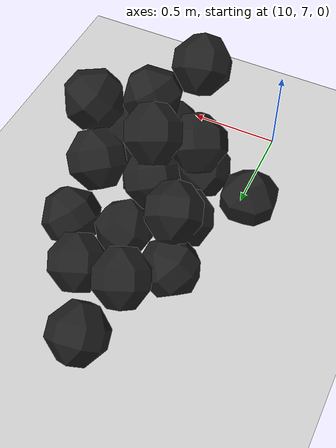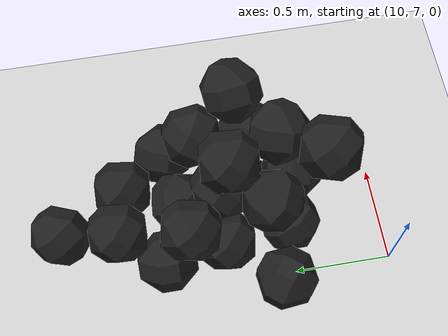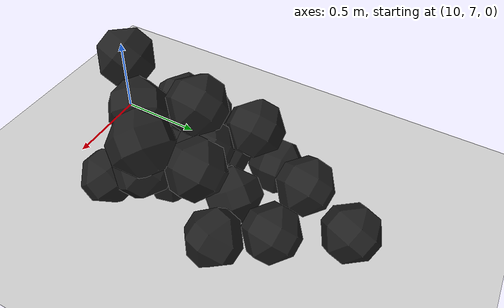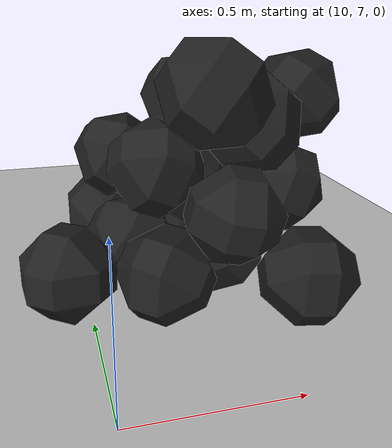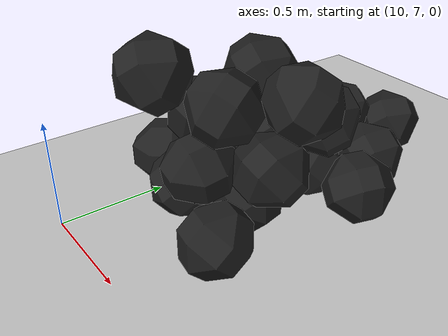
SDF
<sdf version="1.6">
 <world name="default">
  <model name="ground_plane">
   <static>1</static>
   <link name="link">
    <collision name="collision">
     <geometry><plane><normal>0 0 1</normal><size>100 100</size></plane></geometry>
     <surface><friction><ode><mu>100</mu><mu2>50</mu2></ode></friction></surface>
    </collision>
    <visual name="visual">
     <cast_shadows>0</cast_shadows>
     <geometry><plane><normal>0 0 1</normal><size>100 100</size></plane></geometry>
     <material>
      <script><uri>file://media/materials/scripts/gazebo.material</uri><name>Gazebo/Grey</name></script>
     </material>
    </visual>
   </link>
  </model>
  <model name="haoduomiantiaa_9">
   <link name="link_0">
    <inertial>
     <mass>0.2</mass>
     <inertia>
      <ixx>0.166667</ixx>
      <ixy>0</ixy>
      <ixz>0</ixz>
      <iyy>0.166667</iyy>
      <iyz>0</iyz>
      <izz>0.166667</izz>
     </inertia>
    </inertial>
    <visual name="visual">
     <geometry>
      <mesh>
       <uri>/home/oliver/catkin_ws/src/pudong_gazebo/world/stl/haoduomianti.stl</uri>
       <scale>1 1 1</scale>
      </mesh>
     </geometry>
     <material>
      <lighting>1</lighting>
      <script><uri>file://media/materials/scripts/gazebo.material</uri><name>Gazebo/Black</name></script>
      <shader type="pixel"><normal_map>__default__</normal_map></shader>
      <ambient>0.3 0.3 0.3 1</ambient>
      <diffuse>0.7 0.7 0.7 1</diffuse>
      <specular>0.01 0.01 0.01 1</specular>
      <emissive>0 0 0 1</emissive>
     </material>
    </visual>
    <collision name="collision">
     <geometry>
      <mesh>
       <uri>/home/oliver/catkin_ws/src/pudong_gazebo/world/stl/haoduomianti.stl</uri>
       <scale>1 1 1</scale>
      </mesh>
     </geometry>
     <surface>
      <friction>
       <ode><mu>1</mu><mu2>1</mu2><fdir1>0 0 0</fdir1><slip1>0</slip1><slip2>0</slip2></ode>
       <torsional>
        <coefficient>1</coefficient>
        <patch_radius>0</patch_radius>
        <surface_radius>0</surface_radius>
        <use_patch_radius>1</use_patch_radius>
        <ode><slip>0</slip></ode>
       </torsional>
      </friction>
      <bounce><restitution_coefficient>0</restitution_coefficient><threshold>1e+06</threshold></bounce>
      <contact>
       <collide_without_contact>0</collide_without_contact>
       <collide_without_contact_bitmask>1</collide_without_contact_bitmask>
       <collide_bitmask>1</collide_bitmask>
       <ode>
        <soft_cfm>0</soft_cfm>
        <soft_erp>0.2</soft_erp>
        <kp>1e+13</kp>
        <kd>1</kd>
        <max_vel>0.01</max_vel>
        <min_depth>0</min_depth>
       </ode>
       <bullet>
        <split_impulse>1</split_impulse>
        <split_impulse_penetration_threshold>-0.01</split_impulse_penetration_threshold>
        <soft_cfm>0</soft_cfm>
        <soft_erp>0.2</soft_erp>
        <kp>1e+13</kp>
        <kd>1</kd>
       </bullet>
      </contact>
     </surface>
    </collision>
   </link>
   <static>0</static>
   <pose>10.8139 7.36028 -0.075482 0.068637 -0.784227 1.38536</pose>
  </model>
  <model name="haoduomiantiaa_11">
   <link name="link_0">
    <inertial>
     <mass>0.2</mass>
     <inertia>
      <ixx>0.166667</ixx>
      <ixy>0</ixy>
      <ixz>0</ixz>
      <iyy>0.166667</iyy>
      <iyz>0</iyz>
      <izz>0.166667</izz>
     </inertia>
    </inertial>
    <visual name="visual">
     <geometry>
      <mesh>
       <uri>/home/oliver/catkin_ws/src/pudong_gazebo/world/stl/haoduomianti.stl</uri>
       <scale>1 1 1</scale>
      </mesh>
     </geometry>
     <material>
      <lighting>1</lighting>
      <script><uri>file://media/materials/scripts/gazebo.material</uri><name>Gazebo/Black</name></script>
      <shader type="pixel"><normal_map>__default__</normal_map></shader>
      <ambient>0.3 0.3 0.3 1</ambient>
      <diffuse>0.7 0.7 0.7 1</diffuse>
      <specular>0.01 0.01 0.01 1</specular>
      <emissive>0 0 0 1</emissive>
     </material>
    </visual>
    <collision name="collision">
     <geometry>
      <mesh>
       <uri>/home/oliver/catkin_ws/src/pudong_gazebo/world/stl/haoduomianti.stl</uri>
       <scale>1 1 1</scale>
      </mesh>
     </geometry>
     <surface>
      <friction>
       <ode><mu>1</mu><mu2>1</mu2><fdir1>0 0 0</fdir1><slip1>0</slip1><slip2>0</slip2></ode>
       <torsional>
        <coefficient>1</coefficient>
        <patch_radius>0</patch_radius>
        <surface_radius>0</surface_radius>
        <use_patch_radius>1</use_patch_radius>
        <ode><slip>0</slip></ode>
       </torsional>
      </friction>
      <bounce><restitution_coefficient>0</restitution_coefficient><threshold>1e+06</threshold></bounce>
      <contact>
       <collide_without_contact>0</collide_without_contact>
       <collide_without_contact_bitmask>1</collide_without_contact_bitmask>
       <collide_bitmask>1</collide_bitmask>
       <ode>
        <soft_cfm>0</soft_cfm>
        <soft_erp>0.2</soft_erp>
        <kp>1e+13</kp>
        <kd>1</kd>
        <max_vel>0.01</max_vel>
        <min_depth>0</min_depth>
       </ode>
       <bullet>
        <split_impulse>1</split_impulse>
        <split_impulse_penetration_threshold>-0.01</split_impulse_penetration_threshold>
        <soft_cfm>0</soft_cfm>
        <soft_erp>0.2</soft_erp>
        <kp>1e+13</kp>
        <kd>1</kd>
       </bullet>
      </contact>
     </surface>
    </collision>
   </link>
   <static>0</static>
   <pose>10.3337 7.41864 -0.080507 0.143591 -0.780105 0.763256</pose>
  </model>
  <model name="haoduomiantiaa_21">
   <link name="link_0">
    <inertial>
     <mass>0.2</mass>
     <inertia>
      <ixx>0.166667</ixx>
      <ixy>0</ixy>
      <ixz>0</ixz>
      <iyy>0.166667</iyy>
      <iyz>0</iyz>
      <izz>0.166667</izz>
     </inertia>
    </inertial>
    <visual name="visual">
     <geometry>
      <mesh>
       <uri>/home/oliver/catkin_ws/src/pudong_gazebo/world/stl/haoduomianti.stl</uri>
       <scale>1 1 1</scale>
      </mesh>
     </geometry>
     <material>
      <lighting>1</lighting>
      <script><uri>file://media/materials/scripts/gazebo.material</uri><name>Gazebo/Black</name></script>
      <shader type="pixel"><normal_map>__default__</normal_map></shader>
      <ambient>0.3 0.3 0.3 1</ambient>
      <diffuse>0.7 0.7 0.7 1</diffuse>
      <specular>0.01 0.01 0.01 1</specular>
      <emissive>0 0 0 1</emissive>
     </material>
    </visual>
    <collision name="collision">
     <geometry>
      <mesh>
       <uri>/home/oliver/catkin_ws/src/pudong_gazebo/world/stl/haoduomianti.stl</uri>
       <scale>1 1 1</scale>
      </mesh>
     </geometry>
     <surface>
      <friction>
       <ode><mu>1</mu><mu2>1</mu2><fdir1>0 0 0</fdir1><slip1>0</slip1><slip2>0</slip2></ode>
       <torsional>
        <coefficient>1</coefficient>
        <patch_radius>0</patch_radius>
        <surface_radius>0</surface_radius>
        <use_patch_radius>1</use_patch_radius>
        <ode><slip>0</slip></ode>
       </torsional>
      </friction>
      <bounce><restitution_coefficient>0</restitution_coefficient><threshold>1e+06</threshold></bounce>
      <contact>
       <collide_without_contact>0</collide_without_contact>
       <collide_without_contact_bitmask>1</collide_without_contact_bitmask>
       <collide_bitmask>1</collide_bitmask>
       <ode>
        <soft_cfm>0</soft_cfm>
        <soft_erp>0.2</soft_erp>
        <kp>1e+13</kp>
        <kd>1</kd>
        <max_vel>0.01</max_vel>
        <min_depth>0</min_depth>
       </ode>
       <bullet>
        <split_impulse>1</split_impulse>
        <split_impulse_penetration_threshold>-0.01</split_impulse_penetration_threshold>
        <soft_cfm>0</soft_cfm>
        <soft_erp>0.2</soft_erp>
        <kp>1e+13</kp>
        <kd>1</kd>
       </bullet>
      </contact>
     </surface>
    </collision>
   </link>
   <static>0</static>
   <pose>10.6885 7.96182 -0.072444 1.54599 -0.785337 2.83768</pose>
  </model>
  <model name="haoduomiantiaa_23">
   <link name="link_0">
    <inertial>
     <mass>0.2</mass>
     <inertia>
      <ixx>0.166667</ixx>
      <ixy>0</ixy>
      <ixz>0</ixz>
      <iyy>0.166667</iyy>
      <iyz>0</iyz>
      <izz>0.166667</izz>
     </inertia>
    </inertial>
    <visual name="visual">
     <geometry>
      <mesh>
       <uri>/home/oliver/catkin_ws/src/pudong_gazebo/world/stl/haoduomianti.stl</uri>
       <scale>1 1 1</scale>
      </mesh>
     </geometry>
     <material>
      <lighting>1</lighting>
      <script><uri>file://media/materials/scripts/gazebo.material</uri><name>Gazebo/Black</name></script>
      <shader type="pixel"><normal_map>__default__</normal_map></shader>
      <ambient>0.3 0.3 0.3 1</ambient>
      <diffuse>0.7 0.7 0.7 1</diffuse>
      <specular>0.01 0.01 0.01 1</specular>
      <emissive>0 0 0 1</emissive>
     </material>
    </visual>
    <collision name="collision">
     <geometry>
      <mesh>
       <uri>/home/oliver/catkin_ws/src/pudong_gazebo/world/stl/haoduomianti.stl</uri>
       <scale>1 1 1</scale>
      </mesh>
     </geometry>
     <surface>
      <friction>
       <ode><mu>1</mu><mu2>1</mu2><fdir1>0 0 0</fdir1><slip1>0</slip1><slip2>0</slip2></ode>
       <torsional>
        <coefficient>1</coefficient>
        <patch_radius>0</patch_radius>
        <surface_radius>0</surface_radius>
        <use_patch_radius>1</use_patch_radius>
        <ode><slip>0</slip></ode>
       </torsional>
      </friction>
      <bounce><restitution_coefficient>0</restitution_coefficient><threshold>1e+06</threshold></bounce>
      <contact>
       <collide_without_contact>0</collide_without_contact>
       <collide_without_contact_bitmask>1</collide_without_contact_bitmask>
       <collide_bitmask>1</collide_bitmask>
       <ode>
        <soft_cfm>0</soft_cfm>
        <soft_erp>0.2</soft_erp>
        <kp>1e+13</kp>
        <kd>1</kd>
        <max_vel>0.01</max_vel>
        <min_depth>0</min_depth>
       </ode>
       <bullet>
        <split_impulse>1</split_impulse>
        <split_impulse_penetration_threshold>-0.01</split_impulse_penetration_threshold>
        <soft_cfm>0</soft_cfm>
        <soft_erp>0.2</soft_erp>
        <kp>1e+13</kp>
        <kd>1</kd>
       </bullet>
      </contact>
     </surface>
    </collision>
   </link>
   <static>0</static>
   <pose>10.3537 8.69832 -0.115317 0.788207 -0.617346 2.76164</pose>
  </model>
  <model name="haoduomiantiaa_31">
   <link name="link_0">
    <inertial>
     <mass>0.2</mass>
     <inertia>
      <ixx>0.166667</ixx>
      <ixy>0</ixy>
      <ixz>0</ixz>
      <iyy>0.166667</iyy>
      <iyz>0</iyz>
      <izz>0.166667</izz>
     </inertia>
    </inertial>
    <visual name="visual">
     <geometry>
      <mesh>
       <uri>/home/oliver/catkin_ws/src/pudong_gazebo/world/stl/haoduomianti.stl</uri>
       <scale>1 1 1</scale>
      </mesh>
     </geometry>
     <material>
      <lighting>1</lighting>
      <script><uri>file://media/materials/scripts/gazebo.material</uri><name>Gazebo/Black</name></script>
      <shader type="pixel"><normal_map>__default__</normal_map></shader>
      <ambient>0.3 0.3 0.3 1</ambient>
      <diffuse>0.7 0.7 0.7 1</diffuse>
      <specular>0.01 0.01 0.01 1</specular>
      <emissive>0 0 0 1</emissive>
     </material>
    </visual>
    <collision name="collision">
     <geometry>
      <mesh>
       <uri>/home/oliver/catkin_ws/src/pudong_gazebo/world/stl/haoduomianti.stl</uri>
       <scale>1 1 1</scale>
      </mesh>
     </geometry>
     <surface>
      <friction>
       <ode><mu>1</mu><mu2>1</mu2><fdir1>0 0 0</fdir1><slip1>0</slip1><slip2>0</slip2></ode>
       <torsional>
        <coefficient>1</coefficient>
        <patch_radius>0</patch_radius>
        <surface_radius>0</surface_radius>
        <use_patch_radius>1</use_patch_radius>
        <ode><slip>0</slip></ode>
       </torsional>
      </friction>
      <bounce><restitution_coefficient>0</restitution_coefficient><threshold>1e+06</threshold></bounce>
      <contact>
       <collide_without_contact>0</collide_without_contact>
       <collide_without_contact_bitmask>1</collide_without_contact_bitmask>
       <collide_bitmask>1</collide_bitmask>
       <ode>
        <soft_cfm>0</soft_cfm>
        <soft_erp>0.2</soft_erp>
        <kp>1e+13</kp>
        <kd>1</kd>
        <max_vel>0.01</max_vel>
        <min_depth>0</min_depth>
       </ode>
       <bullet>
        <split_impulse>1</split_impulse>
        <split_impulse_penetration_threshold>-0.01</split_impulse_penetration_threshold>
        <soft_cfm>0</soft_cfm>
        <soft_erp>0.2</soft_erp>
        <kp>1e+13</kp>
        <kd>1</kd>
       </bullet>
      </contact>
     </surface>
    </collision>
   </link>
   <static>0</static>
   <pose>10.5136 7.53828 -0.074862 1.53938 -0.785956 -2.88558</pose>
  </model>
  <model name="haoduomiantiaa_41">
   <link name="link_0">
    <inertial>
     <mass>0.2</mass>
     <inertia>
      <ixx>0.166667</ixx>
      <ixy>0</ixy>
      <ixz>0</ixz>
      <iyy>0.166667</iyy>
      <iyz>0</iyz>
      <izz>0.166667</izz>
     </inertia>
    </inertial>
    <visual name="visual">
     <geometry>
      <mesh>
       <uri>/home/oliver/catkin_ws/src/pudong_gazebo/world/stl/haoduomianti.stl</uri>
       <scale>1 1 1</scale>
      </mesh>
     </geometry>
     <material>
      <lighting>1</lighting>
      <script><uri>file://media/materials/scripts/gazebo.material</uri><name>Gazebo/Black</name></script>
      <shader type="pixel"><normal_map>__default__</normal_map></shader>
      <ambient>0.3 0.3 0.3 1</ambient>
      <diffuse>0.7 0.7 0.7 1</diffuse>
      <specular>0.01 0.01 0.01 1</specular>
      <emissive>0 0 0 1</emissive>
     </material>
    </visual>
    <collision name="collision">
     <geometry>
      <mesh>
       <uri>/home/oliver/catkin_ws/src/pudong_gazebo/world/stl/haoduomianti.stl</uri>
       <scale>1 1 1</scale>
      </mesh>
     </geometry>
     <surface>
      <friction>
       <ode><mu>1</mu><mu2>1</mu2><fdir1>0 0 0</fdir1><slip1>0</slip1><slip2>0</slip2></ode>
       <torsional>
        <coefficient>1</coefficient>
        <patch_radius>0</patch_radius>
        <surface_radius>0</surface_radius>
        <use_patch_radius>1</use_patch_radius>
        <ode><slip>0</slip></ode>
       </torsional>
      </friction>
      <bounce><restitution_coefficient>0</restitution_coefficient><threshold>1e+06</threshold></bounce>
      <contact>
       <collide_without_contact>0</collide_without_contact>
       <collide_without_contact_bitmask>1</collide_without_contact_bitmask>
       <collide_bitmask>1</collide_bitmask>
       <ode>
        <soft_cfm>0</soft_cfm>
        <soft_erp>0.2</soft_erp>
        <kp>1e+13</kp>
        <kd>1</kd>
        <max_vel>0.01</max_vel>
        <min_depth>0</min_depth>
       </ode>
       <bullet>
        <split_impulse>1</split_impulse>
        <split_impulse_penetration_threshold>-0.01</split_impulse_penetration_threshold>
        <soft_cfm>0</soft_cfm>
        <soft_erp>0.2</soft_erp>
        <kp>1e+13</kp>
        <kd>1</kd>
       </bullet>
      </contact>
     </surface>
    </collision>
   </link>
   <static>0</static>
   <pose>10.1442 7.60395 0.00013 0.000139 -0.001342 2.46369</pose>
  </model>
  <model name="haoduomiantiaa_56">
   <link name="link_0">
    <inertial>
     <mass>0.2</mass>
     <inertia>
      <ixx>0.166667</ixx>
      <ixy>0</ixy>
      <ixz>0</ixz>
      <iyy>0.166667</iyy>
      <iyz>0</iyz>
      <izz>0.166667</izz>
     </inertia>
    </inertial>
    <visual name="visual">
     <geometry>
      <mesh>
       <uri>/home/oliver/catkin_ws/src/pudong_gazebo/world/stl/haoduomianti.stl</uri>
       <scale>1 1 1</scale>
      </mesh>
     </geometry>
     <material>
      <lighting>1</lighting>
      <script><uri>file://media/materials/scripts/gazebo.material</uri><name>Gazebo/Black</name></script>
      <shader type="pixel"><normal_map>__default__</normal_map></shader>
      <ambient>0.3 0.3 0.3 1</ambient>
      <diffuse>0.7 0.7 0.7 1</diffuse>
      <specular>0.01 0.01 0.01 1</specular>
      <emissive>0 0 0 1</emissive>
     </material>
    </visual>
    <collision name="collision">
     <geometry>
      <mesh>
       <uri>/home/oliver/catkin_ws/src/pudong_gazebo/world/stl/haoduomianti.stl</uri>
       <scale>1 1 1</scale>
      </mesh>
     </geometry>
     <surface>
      <friction>
       <ode><mu>1</mu><mu2>1</mu2><fdir1>0 0 0</fdir1><slip1>0</slip1><slip2>0</slip2></ode>
       <torsional>
        <coefficient>1</coefficient>
        <patch_radius>0</patch_radius>
        <surface_radius>0</surface_radius>
        <use_patch_radius>1</use_patch_radius>
        <ode><slip>0</slip></ode>
       </torsional>
      </friction>
      <bounce><restitution_coefficient>0</restitution_coefficient><threshold>1e+06</threshold></bounce>
      <contact>
       <collide_without_contact>0</collide_without_contact>
       <collide_without_contact_bitmask>1</collide_without_contact_bitmask>
       <collide_bitmask>1</collide_bitmask>
       <ode>
        <soft_cfm>0</soft_cfm>
        <soft_erp>0.2</soft_erp>
        <kp>1e+13</kp>
        <kd>1</kd>
        <max_vel>0.01</max_vel>
        <min_depth>0</min_depth>
       </ode>
       <bullet>
        <split_impulse>1</split_impulse>
        <split_impulse_penetration_threshold>-0.01</split_impulse_penetration_threshold>
        <soft_cfm>0</soft_cfm>
        <soft_erp>0.2</soft_erp>
        <kp>1e+13</kp>
        <kd>1</kd>
       </bullet>
      </contact>
     </surface>
    </collision>
   </link>
   <static>0</static>
   <pose>10.5516 7.33413 0.137446 0.74304 -1.28121 -0.834381</pose>
  </model>
  <model name="haoduomiantiaa_58">
   <link name="link_0">
    <inertial>
     <mass>0.2</mass>
     <inertia>
      <ixx>0.166667</ixx>
      <ixy>0</ixy>
      <ixz>0</ixz>
      <iyy>0.166667</iyy>
      <iyz>0</iyz>
      <izz>0.166667</izz>
     </inertia>
    </inertial>
    <visual name="visual">
     <geometry>
      <mesh>
       <uri>/home/oliver/catkin_ws/src/pudong_gazebo/world/stl/haoduomianti.stl</uri>
       <scale>1 1 1</scale>
      </mesh>
     </geometry>
     <material>
      <lighting>1</lighting>
      <script><uri>file://media/materials/scripts/gazebo.material</uri><name>Gazebo/Black</name></script>
      <shader type="pixel"><normal_map>__default__</normal_map></shader>
      <ambient>0.3 0.3 0.3 1</ambient>
      <diffuse>0.7 0.7 0.7 1</diffuse>
      <specular>0.01 0.01 0.01 1</specular>
      <emissive>0 0 0 1</emissive>
     </material>
    </visual>
    <collision name="collision">
     <geometry>
      <mesh>
       <uri>/home/oliver/catkin_ws/src/pudong_gazebo/world/stl/haoduomianti.stl</uri>
       <scale>1 1 1</scale>
      </mesh>
     </geometry>
     <surface>
      <friction>
       <ode><mu>1</mu><mu2>1</mu2><fdir1>0 0 0</fdir1><slip1>0</slip1><slip2>0</slip2></ode>
       <torsional>
        <coefficient>1</coefficient>
        <patch_radius>0</patch_radius>
        <surface_radius>0</surface_radius>
        <use_patch_radius>1</use_patch_radius>
        <ode><slip>0</slip></ode>
       </torsional>
      </friction>
      <bounce><restitution_coefficient>0</restitution_coefficient><threshold>1e+06</threshold></bounce>
      <contact>
       <collide_without_contact>0</collide_without_contact>
       <collide_without_contact_bitmask>1</collide_without_contact_bitmask>
       <collide_bitmask>1</collide_bitmask>
       <ode>
        <soft_cfm>0</soft_cfm>
        <soft_erp>0.2</soft_erp>
        <kp>1e+13</kp>
        <kd>1</kd>
        <max_vel>0.01</max_vel>
        <min_depth>0</min_depth>
       </ode>
       <bullet>
        <split_impulse>1</split_impulse>
        <split_impulse_penetration_threshold>-0.01</split_impulse_penetration_threshold>
        <soft_cfm>0</soft_cfm>
        <soft_erp>0.2</soft_erp>
        <kp>1e+13</kp>
        <kd>1</kd>
       </bullet>
      </contact>
     </surface>
    </collision>
   </link>
   <static>0</static>
   <pose>10.3868 7.81648 0.103332 0.70411 -0.710638 -0.918321</pose>
  </model>
  <model name="haoduomiantiaa_68">
   <link name="link_0">
    <inertial>
     <mass>0.2</mass>
     <inertia>
      <ixx>0.166667</ixx>
      <ixy>0</ixy>
      <ixz>0</ixz>
      <iyy>0.166667</iyy>
      <iyz>0</iyz>
      <izz>0.166667</izz>
     </inertia>
    </inertial>
    <visual name="visual">
     <geometry>
      <mesh>
       <uri>/home/oliver/catkin_ws/src/pudong_gazebo/world/stl/haoduomianti.stl</uri>
       <scale>1 1 1</scale>
      </mesh>
     </geometry>
     <material>
      <lighting>1</lighting>
      <script><uri>file://media/materials/scripts/gazebo.material</uri><name>Gazebo/Black</name></script>
      <shader type="pixel"><normal_map>__default__</normal_map></shader>
      <ambient>0.3 0.3 0.3 1</ambient>
      <diffuse>0.7 0.7 0.7 1</diffuse>
      <specular>0.01 0.01 0.01 1</specular>
      <emissive>0 0 0 1</emissive>
     </material>
    </visual>
    <collision name="collision">
     <geometry>
      <mesh>
       <uri>/home/oliver/catkin_ws/src/pudong_gazebo/world/stl/haoduomianti.stl</uri>
       <scale>1 1 1</scale>
      </mesh>
     </geometry>
     <surface>
      <friction>
       <ode><mu>1</mu><mu2>1</mu2><fdir1>0 0 0</fdir1><slip1>0</slip1><slip2>0</slip2></ode>
       <torsional>
        <coefficient>1</coefficient>
        <patch_radius>0</patch_radius>
        <surface_radius>0</surface_radius>
        <use_patch_radius>1</use_patch_radius>
        <ode><slip>0</slip></ode>
       </torsional>
      </friction>
      <bounce><restitution_coefficient>0</restitution_coefficient><threshold>1e+06</threshold></bounce>
      <contact>
       <collide_without_contact>0</collide_without_contact>
       <collide_without_contact_bitmask>1</collide_without_contact_bitmask>
       <collide_bitmask>1</collide_bitmask>
       <ode>
        <soft_cfm>0</soft_cfm>
        <soft_erp>0.2</soft_erp>
        <kp>1e+13</kp>
        <kd>1</kd>
        <max_vel>0.01</max_vel>
        <min_depth>0</min_depth>
       </ode>
       <bullet>
        <split_impulse>1</split_impulse>
        <split_impulse_penetration_threshold>-0.01</split_impulse_penetration_threshold>
        <soft_cfm>0</soft_cfm>
        <soft_erp>0.2</soft_erp>
        <kp>1e+13</kp>
        <kd>1</kd>
       </bullet>
      </contact>
     </surface>
    </collision>
   </link>
   <static>0</static>
   <pose>10.5273 7.98467 -0.086585 0.231477 -0.771792 0.703752</pose>
  </model>
  <model name="haoduomiantiaa_72">
   <link name="link_0">
    <inertial>
     <mass>0.2</mass>
     <inertia>
      <ixx>0.166667</ixx>
      <ixy>0</ixy>
      <ixz>0</ixz>
      <iyy>0.166667</iyy>
      <iyz>0</iyz>
      <izz>0.166667</izz>
     </inertia>
    </inertial>
    <visual name="visual">
     <geometry>
      <mesh>
       <uri>/home/oliver/catkin_ws/src/pudong_gazebo/world/stl/haoduomianti.stl</uri>
       <scale>1 1 1</scale>
      </mesh>
     </geometry>
     <material>
      <lighting>1</lighting>
      <script><uri>file://media/materials/scripts/gazebo.material</uri><name>Gazebo/Black</name></script>
      <shader type="pixel"><normal_map>__default__</normal_map></shader>
      <ambient>0.3 0.3 0.3 1</ambient>
      <diffuse>0.7 0.7 0.7 1</diffuse>
      <specular>0.01 0.01 0.01 1</specular>
      <emissive>0 0 0 1</emissive>
     </material>
    </visual>
    <collision name="collision">
     <geometry>
      <mesh>
       <uri>/home/oliver/catkin_ws/src/pudong_gazebo/world/stl/haoduomianti.stl</uri>
       <scale>1 1 1</scale>
      </mesh>
     </geometry>
     <surface>
      <friction>
       <ode><mu>1</mu><mu2>1</mu2><fdir1>0 0 0</fdir1><slip1>0</slip1><slip2>0</slip2></ode>
       <torsional>
        <coefficient>1</coefficient>
        <patch_radius>0</patch_radius>
        <surface_radius>0</surface_radius>
        <use_patch_radius>1</use_patch_radius>
        <ode><slip>0</slip></ode>
       </torsional>
      </friction>
      <bounce><restitution_coefficient>0</restitution_coefficient><threshold>1e+06</threshold></bounce>
      <contact>
       <collide_without_contact>0</collide_without_contact>
       <collide_without_contact_bitmask>1</collide_without_contact_bitmask>
       <collide_bitmask>1</collide_bitmask>
       <ode>
        <soft_cfm>0</soft_cfm>
        <soft_erp>0.2</soft_erp>
        <kp>1e+13</kp>
        <kd>1</kd>
        <max_vel>0.01</max_vel>
        <min_depth>0</min_depth>
       </ode>
       <bullet>
        <split_impulse>1</split_impulse>
        <split_impulse_penetration_threshold>-0.01</split_impulse_penetration_threshold>
        <soft_cfm>0</soft_cfm>
        <soft_erp>0.2</soft_erp>
        <kp>1e+13</kp>
        <kd>1</kd>
       </bullet>
      </contact>
     </surface>
    </collision>
   </link>
   <static>0</static>
   <pose>10.5597 8.3467 -0.115237 0.785586 -0.611431 3.01614</pose>
  </model>
  <model name="haoduomiantiaa_94">
   <link name="link_0">
    <inertial>
     <mass>0.2</mass>
     <inertia>
      <ixx>0.166667</ixx>
      <ixy>0</ixy>
      <ixz>0</ixz>
      <iyy>0.166667</iyy>
      <iyz>0</iyz>
      <izz>0.166667</izz>
     </inertia>
    </inertial>
    <visual name="visual">
     <geometry>
      <mesh>
       <uri>/home/oliver/catkin_ws/src/pudong_gazebo/world/stl/haoduomianti.stl</uri>
       <scale>1 1 1</scale>
      </mesh>
     </geometry>
     <material>
      <lighting>1</lighting>
      <script><uri>file://media/materials/scripts/gazebo.material</uri><name>Gazebo/Black</name></script>
      <shader type="pixel"><normal_map>__default__</normal_map></shader>
      <ambient>0.3 0.3 0.3 1</ambient>
      <diffuse>0.7 0.7 0.7 1</diffuse>
      <specular>0.01 0.01 0.01 1</specular>
      <emissive>0 0 0 1</emissive>
     </material>
    </visual>
    <collision name="collision">
     <geometry>
      <mesh>
       <uri>/home/oliver/catkin_ws/src/pudong_gazebo/world/stl/haoduomianti.stl</uri>
       <scale>1 1 1</scale>
      </mesh>
     </geometry>
     <surface>
      <friction>
       <ode><mu>1</mu><mu2>1</mu2><fdir1>0 0 0</fdir1><slip1>0</slip1><slip2>0</slip2></ode>
       <torsional>
        <coefficient>1</coefficient>
        <patch_radius>0</patch_radius>
        <surface_radius>0</surface_radius>
        <use_patch_radius>1</use_patch_radius>
        <ode><slip>0</slip></ode>
       </torsional>
      </friction>
      <bounce><restitution_coefficient>0</restitution_coefficient><threshold>1e+06</threshold></bounce>
      <contact>
       <collide_without_contact>0</collide_without_contact>
       <collide_without_contact_bitmask>1</collide_without_contact_bitmask>
       <collide_bitmask>1</collide_bitmask>
       <ode>
        <soft_cfm>0</soft_cfm>
        <soft_erp>0.2</soft_erp>
        <kp>1e+13</kp>
        <kd>1</kd>
        <max_vel>0.01</max_vel>
        <min_depth>0</min_depth>
       </ode>
       <bullet>
        <split_impulse>1</split_impulse>
        <split_impulse_penetration_threshold>-0.01</split_impulse_penetration_threshold>
        <soft_cfm>0</soft_cfm>
        <soft_erp>0.2</soft_erp>
        <kp>1e+13</kp>
        <kd>1</kd>
       </bullet>
      </contact>
     </surface>
    </collision>
   </link>
   <static>0</static>
   <pose>10.7371 7.65213 0.117799 1.03214 -0.725811 -1.07104</pose>
  </model>
  <model name="haoduomiantiaa_112">
   <link name="link_0">
    <inertial>
     <mass>0.2</mass>
     <inertia>
      <ixx>0.166667</ixx>
      <ixy>0</ixy>
      <ixz>0</ixz>
      <iyy>0.166667</iyy>
      <iyz>0</iyz>
      <izz>0.166667</izz>
     </inertia>
    </inertial>
    <visual name="visual">
     <geometry>
      <mesh>
       <uri>/home/oliver/catkin_ws/src/pudong_gazebo/world/stl/haoduomianti.stl</uri>
       <scale>1 1 1</scale>
      </mesh>
     </geometry>
     <material>
      <lighting>1</lighting>
      <script><uri>file://media/materials/scripts/gazebo.material</uri><name>Gazebo/Black</name></script>
      <shader type="pixel"><normal_map>__default__</normal_map></shader>
      <ambient>0.3 0.3 0.3 1</ambient>
      <diffuse>0.7 0.7 0.7 1</diffuse>
      <specular>0.01 0.01 0.01 1</specular>
      <emissive>0 0 0 1</emissive>
     </material>
    </visual>
    <collision name="collision">
     <geometry>
      <mesh>
       <uri>/home/oliver/catkin_ws/src/pudong_gazebo/world/stl/haoduomianti.stl</uri>
       <scale>1 1 1</scale>
      </mesh>
     </geometry>
     <surface>
      <friction>
       <ode><mu>1</mu><mu2>1</mu2><fdir1>0 0 0</fdir1><slip1>0</slip1><slip2>0</slip2></ode>
       <torsional>
        <coefficient>1</coefficient>
        <patch_radius>0</patch_radius>
        <surface_radius>0</surface_radius>
        <use_patch_radius>1</use_patch_radius>
        <ode><slip>0</slip></ode>
       </torsional>
      </friction>
      <bounce><restitution_coefficient>0</restitution_coefficient><threshold>1e+06</threshold></bounce>
      <contact>
       <collide_without_contact>0</collide_without_contact>
       <collide_without_contact_bitmask>1</collide_without_contact_bitmask>
       <collide_bitmask>1</collide_bitmask>
       <ode>
        <soft_cfm>0</soft_cfm>
        <soft_erp>0.2</soft_erp>
        <kp>1e+13</kp>
        <kd>1</kd>
        <max_vel>0.01</max_vel>
        <min_depth>0</min_depth>
       </ode>
       <bullet>
        <split_impulse>1</split_impulse>
        <split_impulse_penetration_threshold>-0.01</split_impulse_penetration_threshold>
        <soft_cfm>0</soft_cfm>
        <soft_erp>0.2</soft_erp>
        <kp>1e+13</kp>
        <kd>1</kd>
       </bullet>
      </contact>
     </surface>
    </collision>
   </link>
   <static>0</static>
   <pose>10.6284 7.90165 0.236548 0.606517 -0.747324 -0.884534</pose>
  </model>
  <model name="haoduomiantiaa_119">
   <link name="link_0">
    <inertial>
     <mass>0.2</mass>
     <inertia>
      <ixx>0.166667</ixx>
      <ixy>0</ixy>
      <ixz>0</ixz>
      <iyy>0.166667</iyy>
      <iyz>0</iyz>
      <izz>0.166667</izz>
     </inertia>
    </inertial>
    <visual name="visual">
     <geometry>
      <mesh>
       <uri>/home/oliver/catkin_ws/src/pudong_gazebo/world/stl/haoduomianti.stl</uri>
       <scale>1 1 1</scale>
      </mesh>
     </geometry>
     <material>
      <lighting>1</lighting>
      <script><uri>file://media/materials/scripts/gazebo.material</uri><name>Gazebo/Black</name></script>
      <shader type="pixel"><normal_map>__default__</normal_map></shader>
      <ambient>0.3 0.3 0.3 1</ambient>
      <diffuse>0.7 0.7 0.7 1</diffuse>
      <specular>0.01 0.01 0.01 1</specular>
      <emissive>0 0 0 1</emissive>
     </material>
    </visual>
    <collision name="collision">
     <geometry>
      <mesh>
       <uri>/home/oliver/catkin_ws/src/pudong_gazebo/world/stl/haoduomianti.stl</uri>
       <scale>1 1 1</scale>
      </mesh>
     </geometry>
     <surface>
      <friction>
       <ode><mu>1</mu><mu2>1</mu2><fdir1>0 0 0</fdir1><slip1>0</slip1><slip2>0</slip2></ode>
       <torsional>
        <coefficient>1</coefficient>
        <patch_radius>0</patch_radius>
        <surface_radius>0</surface_radius>
        <use_patch_radius>1</use_patch_radius>
        <ode><slip>0</slip></ode>
       </torsional>
      </friction>
      <bounce><restitution_coefficient>0</restitution_coefficient><threshold>1e+06</threshold></bounce>
      <contact>
       <collide_without_contact>0</collide_without_contact>
       <collide_without_contact_bitmask>1</collide_without_contact_bitmask>
       <collide_bitmask>1</collide_bitmask>
       <ode>
        <soft_cfm>0</soft_cfm>
        <soft_erp>0.2</soft_erp>
        <kp>1e+13</kp>
        <kd>1</kd>
        <max_vel>0.01</max_vel>
        <min_depth>0</min_depth>
       </ode>
       <bullet>
        <split_impulse>1</split_impulse>
        <split_impulse_penetration_threshold>-0.01</split_impulse_penetration_threshold>
        <soft_cfm>0</soft_cfm>
        <soft_erp>0.2</soft_erp>
        <kp>1e+13</kp>
        <kd>1</kd>
       </bullet>
      </contact>
     </surface>
    </collision>
   </link>
   <static>0</static>
   <pose>10.2829 7.64667 0.219434 0.684184 -0.413044 -2.96453</pose>
  </model>
  <model name="haoduomiantiaa_121">
   <link name="link_0">
    <inertial>
     <mass>0.2</mass>
     <inertia>
      <ixx>0.166667</ixx>
      <ixy>0</ixy>
      <ixz>0</ixz>
      <iyy>0.166667</iyy>
      <iyz>0</iyz>
      <izz>0.166667</izz>
     </inertia>
    </inertial>
    <visual name="visual">
     <geometry>
      <mesh>
       <uri>/home/oliver/catkin_ws/src/pudong_gazebo/world/stl/haoduomianti.stl</uri>
       <scale>1 1 1</scale>
      </mesh>
     </geometry>
     <material>
      <lighting>1</lighting>
      <script><uri>file://media/materials/scripts/gazebo.material</uri><name>Gazebo/Black</name></script>
      <shader type="pixel"><normal_map>__default__</normal_map></shader>
      <ambient>0.3 0.3 0.3 1</ambient>
      <diffuse>0.7 0.7 0.7 1</diffuse>
      <specular>0.01 0.01 0.01 1</specular>
      <emissive>0 0 0 1</emissive>
     </material>
    </visual>
    <collision name="collision">
     <geometry>
      <mesh>
       <uri>/home/oliver/catkin_ws/src/pudong_gazebo/world/stl/haoduomianti.stl</uri>
       <scale>1 1 1</scale>
      </mesh>
     </geometry>
     <surface>
      <friction>
       <ode><mu>1</mu><mu2>1</mu2><fdir1>0 0 0</fdir1><slip1>0</slip1><slip2>0</slip2></ode>
       <torsional>
        <coefficient>1</coefficient>
        <patch_radius>0</patch_radius>
        <surface_radius>0</surface_radius>
        <use_patch_radius>1</use_patch_radius>
        <ode><slip>0</slip></ode>
       </torsional>
      </friction>
      <bounce><restitution_coefficient>0</restitution_coefficient><threshold>1e+06</threshold></bounce>
      <contact>
       <collide_without_contact>0</collide_without_contact>
       <collide_without_contact_bitmask>1</collide_without_contact_bitmask>
       <collide_bitmask>1</collide_bitmask>
       <ode>
        <soft_cfm>0</soft_cfm>
        <soft_erp>0.2</soft_erp>
        <kp>1e+13</kp>
        <kd>1</kd>
        <max_vel>0.01</max_vel>
        <min_depth>0</min_depth>
       </ode>
       <bullet>
        <split_impulse>1</split_impulse>
        <split_impulse_penetration_threshold>-0.01</split_impulse_penetration_threshold>
        <soft_cfm>0</soft_cfm>
        <soft_erp>0.2</soft_erp>
        <kp>1e+13</kp>
        <kd>1</kd>
       </bullet>
      </contact>
     </surface>
    </collision>
   </link>
   <static>0</static>
   <pose>10.8097 7.70805 0.412547 0.617001 -0.776535 0.214523</pose>
  </model>
  <model name="haoduomiantiaa_132">
   <link name="link_0">
    <inertial>
     <mass>0.2</mass>
     <inertia>
      <ixx>0.166667</ixx>
      <ixy>0</ixy>
      <ixz>0</ixz>
      <iyy>0.166667</iyy>
      <iyz>0</iyz>
      <izz>0.166667</izz>
     </inertia>
    </inertial>
    <visual name="visual">
     <geometry>
      <mesh>
       <uri>/home/oliver/catkin_ws/src/pudong_gazebo/world/stl/haoduomianti.stl</uri>
       <scale>1 1 1</scale>
      </mesh>
     </geometry>
     <material>
      <lighting>1</lighting>
      <script><uri>file://media/materials/scripts/gazebo.material</uri><name>Gazebo/Black</name></script>
      <shader type="pixel"><normal_map>__default__</normal_map></shader>
      <ambient>0.3 0.3 0.3 1</ambient>
      <diffuse>0.7 0.7 0.7 1</diffuse>
      <specular>0.01 0.01 0.01 1</specular>
      <emissive>0 0 0 1</emissive>
     </material>
    </visual>
    <collision name="collision">
     <geometry>
      <mesh>
       <uri>/home/oliver/catkin_ws/src/pudong_gazebo/world/stl/haoduomianti.stl</uri>
       <scale>1 1 1</scale>
      </mesh>
     </geometry>
     <surface>
      <friction>
       <ode><mu>1</mu><mu2>1</mu2><fdir1>0 0 0</fdir1><slip1>0</slip1><slip2>0</slip2></ode>
       <torsional>
        <coefficient>1</coefficient>
        <patch_radius>0</patch_radius>
        <surface_radius>0</surface_radius>
        <use_patch_radius>1</use_patch_radius>
        <ode><slip>0</slip></ode>
       </torsional>
      </friction>
      <bounce><restitution_coefficient>0</restitution_coefficient><threshold>1e+06</threshold></bounce>
      <contact>
       <collide_without_contact>0</collide_without_contact>
       <collide_without_contact_bitmask>1</collide_without_contact_bitmask>
       <collide_bitmask>1</collide_bitmask>
       <ode>
        <soft_cfm>0</soft_cfm>
        <soft_erp>0.2</soft_erp>
        <kp>1e+13</kp>
        <kd>1</kd>
        <max_vel>0.01</max_vel>
        <min_depth>0</min_depth>
       </ode>
       <bullet>
        <split_impulse>1</split_impulse>
        <split_impulse_penetration_threshold>-0.01</split_impulse_penetration_threshold>
        <soft_cfm>0</soft_cfm>
        <soft_erp>0.2</soft_erp>
        <kp>1e+13</kp>
        <kd>1</kd>
       </bullet>
      </contact>
     </surface>
    </collision>
   </link>
   <static>0</static>
   <pose>10.1813 7.84686 -0.115791 0.785158 -0.615639 -1.16951</pose>
  </model>
  <model name="haoduomiantiaa_142">
   <link name="link_0">
    <inertial>
     <mass>0.2</mass>
     <inertia>
      <ixx>0.166667</ixx>
      <ixy>0</ixy>
      <ixz>0</ixz>
      <iyy>0.166667</iyy>
      <iyz>0</iyz>
      <izz>0.166667</izz>
     </inertia>
    </inertial>
    <visual name="visual">
     <geometry>
      <mesh>
       <uri>/home/oliver/catkin_ws/src/pudong_gazebo/world/stl/haoduomianti.stl</uri>
       <scale>1 1 1</scale>
      </mesh>
     </geometry>
     <material>
      <lighting>1</lighting>
      <script><uri>file://media/materials/scripts/gazebo.material</uri><name>Gazebo/Black</name></script>
      <shader type="pixel"><normal_map>__default__</normal_map></shader>
      <ambient>0.3 0.3 0.3 1</ambient>
      <diffuse>0.7 0.7 0.7 1</diffuse>
      <specular>0.01 0.01 0.01 1</specular>
      <emissive>0 0 0 1</emissive>
     </material>
    </visual>
    <collision name="collision">
     <geometry>
      <mesh>
       <uri>/home/oliver/catkin_ws/src/pudong_gazebo/world/stl/haoduomianti.stl</uri>
       <scale>1 1 1</scale>
      </mesh>
     </geometry>
     <surface>
      <friction>
       <ode><mu>1</mu><mu2>1</mu2><fdir1>0 0 0</fdir1><slip1>0</slip1><slip2>0</slip2></ode>
       <torsional>
        <coefficient>1</coefficient>
        <patch_radius>0</patch_radius>
        <surface_radius>0</surface_radius>
        <use_patch_radius>1</use_patch_radius>
        <ode><slip>0</slip></ode>
       </torsional>
      </friction>
      <bounce><restitution_coefficient>0</restitution_coefficient><threshold>1e+06</threshold></bounce>
      <contact>
       <collide_without_contact>0</collide_without_contact>
       <collide_without_contact_bitmask>1</collide_without_contact_bitmask>
       <collide_bitmask>1</collide_bitmask>
       <ode>
        <soft_cfm>0</soft_cfm>
        <soft_erp>0.2</soft_erp>
        <kp>1e+13</kp>
        <kd>1</kd>
        <max_vel>0.01</max_vel>
        <min_depth>0</min_depth>
       </ode>
       <bullet>
        <split_impulse>1</split_impulse>
        <split_impulse_penetration_threshold>-0.01</split_impulse_penetration_threshold>
        <soft_cfm>0</soft_cfm>
        <soft_erp>0.2</soft_erp>
        <kp>1e+13</kp>
        <kd>1</kd>
       </bullet>
      </contact>
     </surface>
    </collision>
   </link>
   <static>0</static>
   <pose>10.5877 7.51804 0.36258 0.76805 -0.858102 -0.277643</pose>
  </model>
  <model name="haoduomiantiaa_160">
   <link name="link_0">
    <inertial>
     <mass>0.2</mass>
     <inertia>
      <ixx>0.166667</ixx>
      <ixy>0</ixy>
      <ixz>0</ixz>
      <iyy>0.166667</iyy>
      <iyz>0</iyz>
      <izz>0.166667</izz>
     </inertia>
    </inertial>
    <visual name="visual">
     <geometry>
      <mesh>
       <uri>/home/oliver/catkin_ws/src/pudong_gazebo/world/stl/haoduomianti.stl</uri>
       <scale>1 1 1</scale>
      </mesh>
     </geometry>
     <material>
      <lighting>1</lighting>
      <script><uri>file://media/materials/scripts/gazebo.material</uri><name>Gazebo/Black</name></script>
      <shader type="pixel"><normal_map>__default__</normal_map></shader>
      <ambient>0.3 0.3 0.3 1</ambient>
      <diffuse>0.7 0.7 0.7 1</diffuse>
      <specular>0.01 0.01 0.01 1</specular>
      <emissive>0 0 0 1</emissive>
     </material>
    </visual>
    <collision name="collision">
     <geometry>
      <mesh>
       <uri>/home/oliver/catkin_ws/src/pudong_gazebo/world/stl/haoduomianti.stl</uri>
       <scale>1 1 1</scale>
      </mesh>
     </geometry>
     <surface>
      <friction>
       <ode><mu>1</mu><mu2>1</mu2><fdir1>0 0 0</fdir1><slip1>0</slip1><slip2>0</slip2></ode>
       <torsional>
        <coefficient>1</coefficient>
        <patch_radius>0</patch_radius>
        <surface_radius>0</surface_radius>
        <use_patch_radius>1</use_patch_radius>
        <ode><slip>0</slip></ode>
       </torsional>
      </friction>
      <bounce><restitution_coefficient>0</restitution_coefficient><threshold>1e+06</threshold></bounce>
      <contact>
       <collide_without_contact>0</collide_without_contact>
       <collide_without_contact_bitmask>1</collide_without_contact_bitmask>
       <collide_bitmask>1</collide_bitmask>
       <ode>
        <soft_cfm>0</soft_cfm>
        <soft_erp>0.2</soft_erp>
        <kp>1e+13</kp>
        <kd>1</kd>
        <max_vel>0.01</max_vel>
        <min_depth>0</min_depth>
       </ode>
       <bullet>
        <split_impulse>1</split_impulse>
        <split_impulse_penetration_threshold>-0.01</split_impulse_penetration_threshold>
        <soft_cfm>0</soft_cfm>
        <soft_erp>0.2</soft_erp>
        <kp>1e+13</kp>
        <kd>1</kd>
       </bullet>
      </contact>
     </surface>
    </collision>
   </link>
   <static>0</static>
   <pose>10.1702 8.07184 0.160014 0.899505 -0.720759 0.812177</pose>
  </model>
  <model name="haoduomiantiaa_167">
   <link name="link_0">
    <inertial>
     <mass>0.2</mass>
     <inertia>
      <ixx>0.166667</ixx>
      <ixy>0</ixy>
      <ixz>0</ixz>
      <iyy>0.166667</iyy>
      <iyz>0</iyz>
      <izz>0.166667</izz>
     </inertia>
    </inertial>
    <visual name="visual">
     <geometry>
      <mesh>
       <uri>/home/oliver/catkin_ws/src/pudong_gazebo/world/stl/haoduomianti.stl</uri>
       <scale>1 1 1</scale>
      </mesh>
     </geometry>
     <material>
      <lighting>1</lighting>
      <script><uri>file://media/materials/scripts/gazebo.material</uri><name>Gazebo/Black</name></script>
      <shader type="pixel"><normal_map>__default__</normal_map></shader>
      <ambient>0.3 0.3 0.3 1</ambient>
      <diffuse>0.7 0.7 0.7 1</diffuse>
      <specular>0.01 0.01 0.01 1</specular>
      <emissive>0 0 0 1</emissive>
     </material>
    </visual>
    <collision name="collision">
     <geometry>
      <mesh>
       <uri>/home/oliver/catkin_ws/src/pudong_gazebo/world/stl/haoduomianti.stl</uri>
       <scale>1 1 1</scale>
      </mesh>
     </geometry>
     <surface>
      <friction>
       <ode><mu>1</mu><mu2>1</mu2><fdir1>0 0 0</fdir1><slip1>0</slip1><slip2>0</slip2></ode>
       <torsional>
        <coefficient>1</coefficient>
        <patch_radius>0</patch_radius>
        <surface_radius>0</surface_radius>
        <use_patch_radius>1</use_patch_radius>
        <ode><slip>0</slip></ode>
       </torsional>
      </friction>
      <bounce><restitution_coefficient>0</restitution_coefficient><threshold>1e+06</threshold></bounce>
      <contact>
       <collide_without_contact>0</collide_without_contact>
       <collide_without_contact_bitmask>1</collide_without_contact_bitmask>
       <collide_bitmask>1</collide_bitmask>
       <ode>
        <soft_cfm>0</soft_cfm>
        <soft_erp>0.2</soft_erp>
        <kp>1e+13</kp>
        <kd>1</kd>
        <max_vel>0.01</max_vel>
        <min_depth>0</min_depth>
       </ode>
       <bullet>
        <split_impulse>1</split_impulse>
        <split_impulse_penetration_threshold>-0.01</split_impulse_penetration_threshold>
        <soft_cfm>0</soft_cfm>
        <soft_erp>0.2</soft_erp>
        <kp>1e+13</kp>
        <kd>1</kd>
       </bullet>
      </contact>
     </surface>
    </collision>
   </link>
   <static>0</static>
   <pose>10.2797 8.38364 -0.003153 0.842183 -0.591309 2.99806</pose>
  </model>
  <model name="haoduomiantiaa_180">
   <link name="link_0">
    <inertial>
     <mass>0.2</mass>
     <inertia>
      <ixx>0.166667</ixx>
      <ixy>0</ixy>
      <ixz>0</ixz>
      <iyy>0.166667</iyy>
      <iyz>0</iyz>
      <izz>0.166667</izz>
     </inertia>
    </inertial>
    <visual name="visual">
     <geometry>
      <mesh>
       <uri>/home/oliver/catkin_ws/src/pudong_gazebo/world/stl/haoduomianti.stl</uri>
       <scale>1 1 1</scale>
      </mesh>
     </geometry>
     <material>
      <lighting>1</lighting>
      <script><uri>file://media/materials/scripts/gazebo.material</uri><name>Gazebo/Black</name></script>
      <shader type="pixel"><normal_map>__default__</normal_map></shader>
      <ambient>0.3 0.3 0.3 1</ambient>
      <diffuse>0.7 0.7 0.7 1</diffuse>
      <specular>0.01 0.01 0.01 1</specular>
      <emissive>0 0 0 1</emissive>
     </material>
    </visual>
    <collision name="collision">
     <geometry>
      <mesh>
       <uri>/home/oliver/catkin_ws/src/pudong_gazebo/world/stl/haoduomianti.stl</uri>
       <scale>1 1 1</scale>
      </mesh>
     </geometry>
     <surface>
      <friction>
       <ode><mu>1</mu><mu2>1</mu2><fdir1>0 0 0</fdir1><slip1>0</slip1><slip2>0</slip2></ode>
       <torsional>
        <coefficient>1</coefficient>
        <patch_radius>0</patch_radius>
        <surface_radius>0</surface_radius>
        <use_patch_radius>1</use_patch_radius>
        <ode><slip>0</slip></ode>
       </torsional>
      </friction>
      <bounce><restitution_coefficient>0</restitution_coefficient><threshold>1e+06</threshold></bounce>
      <contact>
       <collide_without_contact>0</collide_without_contact>
       <collide_without_contact_bitmask>1</collide_without_contact_bitmask>
       <collide_bitmask>1</collide_bitmask>
       <ode>
        <soft_cfm>0</soft_cfm>
        <soft_erp>0.2</soft_erp>
        <kp>1e+13</kp>
        <kd>1</kd>
        <max_vel>0.01</max_vel>
        <min_depth>0</min_depth>
       </ode>
       <bullet>
        <split_impulse>1</split_impulse>
        <split_impulse_penetration_threshold>-0.01</split_impulse_penetration_threshold>
        <soft_cfm>0</soft_cfm>
        <soft_erp>0.2</soft_erp>
        <kp>1e+13</kp>
        <kd>1</kd>
       </bullet>
      </contact>
     </surface>
    </collision>
   </link>
   <static>0</static>
   <pose>10.1236 8.01711 -0.070784 0.785397 -0.000452 1.57194</pose>
  </model>
  <model name="haoduomiantiaa_185">
   <link name="link_0">
    <inertial>
     <mass>0.2</mass>
     <inertia>
      <ixx>0.166667</ixx>
      <ixy>0</ixy>
      <ixz>0</ixz>
      <iyy>0.166667</iyy>
      <iyz>0</iyz>
      <izz>0.166667</izz>
     </inertia>
    </inertial>
    <visual name="visual">
     <geometry>
      <mesh>
       <uri>/home/oliver/catkin_ws/src/pudong_gazebo/world/stl/haoduomianti.stl</uri>
       <scale>1 1 1</scale>
      </mesh>
     </geometry>
     <material>
      <lighting>1</lighting>
      <script><uri>file://media/materials/scripts/gazebo.material</uri><name>Gazebo/Black</name></script>
      <shader type="pixel"><normal_map>__default__</normal_map></shader>
      <ambient>0.3 0.3 0.3 1</ambient>
      <diffuse>0.7 0.7 0.7 1</diffuse>
      <specular>0.01 0.01 0.01 1</specular>
      <emissive>0 0 0 1</emissive>
     </material>
    </visual>
    <collision name="collision">
     <geometry>
      <mesh>
       <uri>/home/oliver/catkin_ws/src/pudong_gazebo/world/stl/haoduomianti.stl</uri>
       <scale>1 1 1</scale>
      </mesh>
     </geometry>
     <surface>
      <friction>
       <ode><mu>1</mu><mu2>1</mu2><fdir1>0 0 0</fdir1><slip1>0</slip1><slip2>0</slip2></ode>
       <torsional>
        <coefficient>1</coefficient>
        <patch_radius>0</patch_radius>
        <surface_radius>0</surface_radius>
        <use_patch_radius>1</use_patch_radius>
        <ode><slip>0</slip></ode>
       </torsional>
      </friction>
      <bounce><restitution_coefficient>0</restitution_coefficient><threshold>1e+06</threshold></bounce>
      <contact>
       <collide_without_contact>0</collide_without_contact>
       <collide_without_contact_bitmask>1</collide_without_contact_bitmask>
       <collide_bitmask>1</collide_bitmask>
       <ode>
        <soft_cfm>0</soft_cfm>
        <soft_erp>0.2</soft_erp>
        <kp>1e+13</kp>
        <kd>1</kd>
        <max_vel>0.01</max_vel>
        <min_depth>0</min_depth>
       </ode>
       <bullet>
        <split_impulse>1</split_impulse>
        <split_impulse_penetration_threshold>-0.01</split_impulse_penetration_threshold>
        <soft_cfm>0</soft_cfm>
        <soft_erp>0.2</soft_erp>
        <kp>1e+13</kp>
        <kd>1</kd>
       </bullet>
      </contact>
     </surface>
    </collision>
   </link>
   <static>0</static>
   <pose>10.4015 7.79908 0.395954 0.717579 -0.597421 1.00668</pose>
  </model>
  <model name="haoduomiantiaa_199">
   <link name="link_0">
    <inertial>
     <mass>0.2</mass>
     <inertia>
      <ixx>0.166667</ixx>
      <ixy>0</ixy>
      <ixz>0</ixz>
      <iyy>0.166667</iyy>
      <iyz>0</iyz>
      <izz>0.166667</izz>
     </inertia>
    </inertial>
    <visual name="visual">
     <geometry>
      <mesh>
       <uri>/home/oliver/catkin_ws/src/pudong_gazebo/world/stl/haoduomianti.stl</uri>
       <scale>1 1 1</scale>
      </mesh>
     </geometry>
     <material>
      <lighting>1</lighting>
      <script><uri>file://media/materials/scripts/gazebo.material</uri><name>Gazebo/Black</name></script>
      <shader type="pixel"><normal_map>__default__</normal_map></shader>
      <ambient>0.3 0.3 0.3 1</ambient>
      <diffuse>0.7 0.7 0.7 1</diffuse>
      <specular>0.01 0.01 0.01 1</specular>
      <emissive>0 0 0 1</emissive>
     </material>
    </visual>
    <collision name="collision">
     <geometry>
      <mesh>
       <uri>/home/oliver/catkin_ws/src/pudong_gazebo/world/stl/haoduomianti.stl</uri>
       <scale>1 1 1</scale>
      </mesh>
     </geometry>
     <surface>
      <friction>
       <ode><mu>1</mu><mu2>1</mu2><fdir1>0 0 0</fdir1><slip1>0</slip1><slip2>0</slip2></ode>
       <torsional>
        <coefficient>1</coefficient>
        <patch_radius>0</patch_radius>
        <surface_radius>0</surface_radius>
        <use_patch_radius>1</use_patch_radius>
        <ode><slip>0</slip></ode>
       </torsional>
      </friction>
      <bounce><restitution_coefficient>0</restitution_coefficient><threshold>1e+06</threshold></bounce>
      <contact>
       <collide_without_contact>0</collide_without_contact>
       <collide_without_contact_bitmask>1</collide_without_contact_bitmask>
       <collide_bitmask>1</collide_bitmask>
       <ode>
        <soft_cfm>0</soft_cfm>
        <soft_erp>0.2</soft_erp>
        <kp>1e+13</kp>
        <kd>1</kd>
        <max_vel>0.01</max_vel>
        <min_depth>0</min_depth>
       </ode>
       <bullet>
        <split_impulse>1</split_impulse>
        <split_impulse_penetration_threshold>-0.01</split_impulse_penetration_threshold>
        <soft_cfm>0</soft_cfm>
        <soft_erp>0.2</soft_erp>
        <kp>1e+13</kp>
        <kd>1</kd>
       </bullet>
      </contact>
     </surface>
    </collision>
   </link>
   <static>0</static>
   <pose>10.3356 7.32899 0.485105 0.848894 -0.620662 2.79561</pose>
  </model>
 </world>
</sdf>
